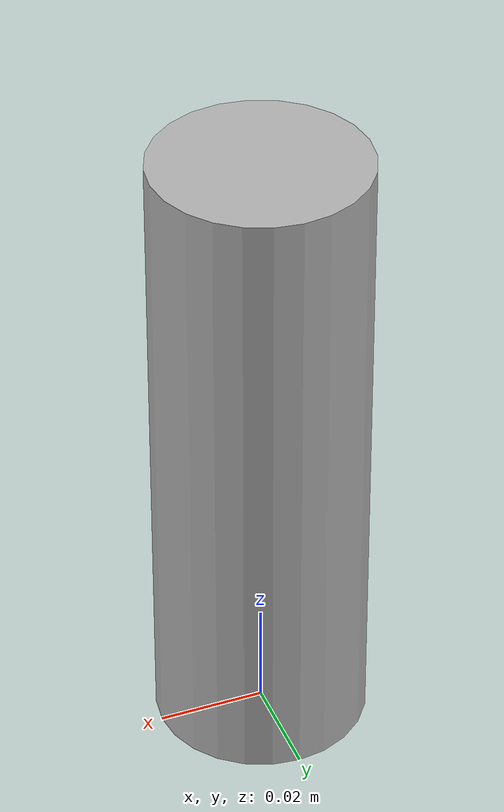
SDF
<?xml version='1.0'?>
<sdf version='1.6'>
  <model name='red_cylinder'>
    <link name='link_2'>
      <inertial>
        <mass>0.00028274</mass>
        <inertia>
          <ixx>3e-07</ixx>
          <ixy>0</ixy>
          <ixz>0</ixz>
          <iyy>3e-07</iyy>
          <iyz>0</iyz>
          <izz>1.3e-07</izz>
        </inertia>
        <pose frame=''>0 0 0 0 -0 0</pose>
      </inertial>
      <pose frame=''>-0 0 0.06 0 -0 0</pose>
      <gravity>1</gravity>
      <self_collide>0</self_collide>
      <kinematic>0</kinematic>
      <enable_wind>0</enable_wind>
      <visual name='visual'>
        <pose frame=''>0 0 0 0 -0 0</pose>
        <geometry>
          <cylinder>
            <radius>0.02</radius>
            <length>0.12</length>
          </cylinder>
        </geometry>
        <material>
          <lighting>1</lighting>
          <shader type='pixel'>
            <normal_map>__default__</normal_map>
          </shader>
          <ambient>1 0 0 1</ambient>
          <diffuse>0.7 0.7 0.7 1</diffuse>
          <specular>0.01 0.01 0.01 1</specular>
          <emissive>0 0 0 1</emissive>
        </material>
        <transparency>0</transparency>
        <cast_shadows>1</cast_shadows>
      </visual>
      <collision name='collision'>
        <laser_retro>0</laser_retro>
        <max_contacts>10</max_contacts>
        <pose frame=''>0 0 0 0 -0 0</pose>
        <geometry>
          <cylinder>
            <radius>0.02</radius>
            <length>0.12</length>
          </cylinder>
        </geometry>
        <surface>
          <friction>
            <ode>
              <mu>1</mu>
              <mu2>1</mu2>
              <fdir1>0 0 0</fdir1>
              <slip1>0</slip1>
              <slip2>0</slip2>
            </ode>
            <torsional>
              <coefficient>1</coefficient>
              <patch_radius>0</patch_radius>
              <surface_radius>0</surface_radius>
              <use_patch_radius>1</use_patch_radius>
              <ode>
                <slip>0</slip>
              </ode>
            </torsional>
          </friction>
          <bounce>
            <restitution_coefficient>0</restitution_coefficient>
            <threshold>1e+06</threshold>
          </bounce>
          <contact>
            <collide_without_contact>0</collide_without_contact>
            <collide_without_contact_bitmask>1</collide_without_contact_bitmask>
            <collide_bitmask>1</collide_bitmask>
            <ode>
              <soft_cfm>0</soft_cfm>
              <soft_erp>0.2</soft_erp>
              <kp>1e+13</kp>
              <kd>1</kd>
              <max_vel>0.01</max_vel>
              <min_depth>0</min_depth>
            </ode>
            <bullet>
              <split_impulse>1</split_impulse>
              <split_impulse_penetration_threshold>-0.01</split_impulse_penetration_threshold>
              <soft_cfm>0</soft_cfm>
              <soft_erp>0.2</soft_erp>
              <kp>1e+13</kp>
              <kd>1</kd>
            </bullet>
          </contact>
        </surface>
      </collision>
    </link>
    <static>0</static>
    <allow_auto_disable>1</allow_auto_disable>
  </model>
</sdf>
